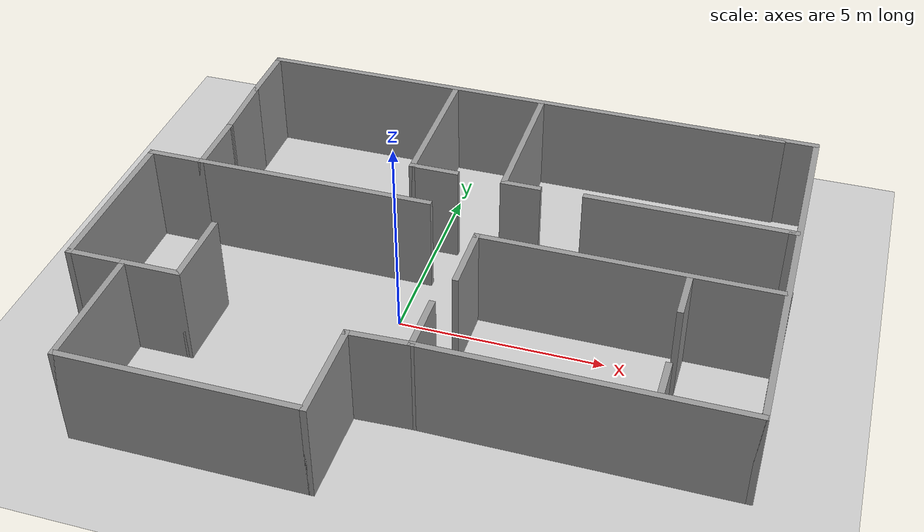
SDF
<sdf version="1.6">
 <world name="default">
  <light name="sun" type="directional">
   <pose>0 0 10 0 -0 0</pose>
   <diffuse>0.8 0.8 0.8 1</diffuse>
   <specular>0.2 0.2 0.2 1</specular>
   <attenuation>
    <range>1000</range>
    <constant>0.9</constant>
    <linear>0.01</linear>
    <quadratic>0.001</quadratic>
   </attenuation>
   <direction>-0.5 0.1 -0.9</direction>
  </light>
  <model name="ground_plane">
   <static>1</static>
   <link name="link">
    <collision name="collision">
     <geometry><plane><normal>0 0 1</normal><size>100 100</size></plane></geometry>
     <surface>
      <contact><collide_bitmask>65535</collide_bitmask></contact>
      <friction><ode><mu>100</mu><mu2>50</mu2></ode></friction>
     </surface>
    </collision>
    <visual name="visual">
     <cast_shadows>0</cast_shadows>
     <geometry><plane><normal>0 0 1</normal><size>100 100</size></plane></geometry>
     <material>
      <script><uri>file://media/materials/scripts/gazebo.material</uri><name>Gazebo/Grey</name></script>
     </material>
    </visual>
   </link>
  </model>
  <gravity>0 0 -9.8</gravity>
  <magnetic_field>6e-06 2.3e-05 -4.2e-05</magnetic_field>
  <atmosphere type="adiabatic"/>
  <physics name="default_physics" default="0" type="ode">
   <max_step_size>0.001</max_step_size>
   <real_time_factor>1</real_time_factor>
   <real_time_update_rate>1000</real_time_update_rate>
  </physics>
  <scene><ambient>0.4 0.4 0.4 1</ambient><background>0.7 0.7 0.7 1</background><shadows>1</shadows></scene>
  <audio><device>default</device></audio>
  <spherical_coordinates>
   <surface_model>EARTH_WGS84</surface_model>
   <latitude_deg>0</latitude_deg>
   <longitude_deg>0</longitude_deg>
   <elevation>0</elevation>
   <heading_deg>0</heading_deg>
  </spherical_coordinates>
  <model name="ufficio">
   <pose>0.905357 0.576151 0 0 -0 0</pose>
   <link name="Wall_0">
    <collision name="Wall_0_Collision">
     <geometry><box><size>13.75 0.15 2.5</size></box></geometry>
     <pose>0 0 1.25 0 -0 0</pose>
    </collision>
    <visual name="Wall_0_Visual">
     <pose>0 0 1.25 0 -0 0</pose>
     <geometry><box><size>13.75 0.15 2.5</size></box></geometry>
     <material>
      <script><uri>file://media/materials/scripts/gazebo.material</uri><name>Gazebo/Grey</name></script>
      <ambient>1 1 1 1</ambient>
     </material>
     <meta><layer>0</layer></meta>
    </visual>
    <pose>0.222 6.08089 0 0 -0 0</pose>
   </link>
   <link name="Wall_10">
    <collision name="Wall_10_Collision">
     <geometry><box><size>2.5 0.15 2.5</size></box></geometry>
     <pose>0 0 1.25 0 -0 0</pose>
    </collision>
    <visual name="Wall_10_Visual">
     <pose>0 0 1.25 0 -0 0</pose>
     <geometry><box><size>2.5 0.15 2.5</size></box></geometry>
     <material>
      <script><uri>file://media/materials/scripts/gazebo.material</uri><name>Gazebo/Grey</name></script>
      <ambient>1 1 1 1</ambient>
     </material>
     <meta><layer>0</layer></meta>
    </visual>
    <pose>-0.9251 -4.95616 0 0 -0 1.5708</pose>
   </link>
   <link name="Wall_12">
    <collision name="Wall_12_Collision">
     <geometry><box><size>7.5 0.15 2.5</size></box></geometry>
     <pose>0 0 1.25 0 -0 0</pose>
    </collision>
    <visual name="Wall_12_Visual">
     <pose>0 0 1.25 0 -0 0</pose>
     <geometry><box><size>7.5 0.15 2.5</size></box></geometry>
     <material>
      <script><uri>file://media/materials/scripts/gazebo.material</uri><name>Gazebo/Grey</name></script>
      <ambient>1 1 1 1</ambient>
     </material>
     <meta><layer>0</layer></meta>
    </visual>
    <pose>4.1856 -3.71884 0 0 -0 0</pose>
   </link>
   <link name="Wall_13">
    <collision name="Wall_13_Collision">
     <geometry><box><size>10 0.15 2.5</size></box></geometry>
     <pose>0 0 1.25 0 -0 0</pose>
    </collision>
    <visual name="Wall_13_Visual">
     <pose>0 0 1.25 0 -0 0</pose>
     <geometry><box><size>10 0.15 2.5</size></box></geometry>
     <material>
      <script><uri>file://media/materials/scripts/gazebo.material</uri><name>Gazebo/Grey</name></script>
      <ambient>1 1 1 1</ambient>
     </material>
     <meta><layer>0</layer></meta>
    </visual>
    <pose>7.8606 1.20616 0 0 -0 1.5708</pose>
   </link>
   <link name="Wall_14">
    <collision name="Wall_14_Collision">
     <geometry><box><size>1.5 0.15 2.5</size></box></geometry>
     <pose>0 0 1.25 0 -0 0</pose>
    </collision>
    <visual name="Wall_14_Visual">
     <pose>0 0 1.25 0 -0 0</pose>
     <geometry><box><size>1.5 0.15 2.5</size></box></geometry>
     <material>
      <script><uri>file://media/materials/scripts/gazebo.material</uri><name>Gazebo/Grey</name></script>
      <ambient>1 1 1 1</ambient>
     </material>
     <meta><layer>0</layer></meta>
    </visual>
    <pose>7.1856 6.13116 0 0 -0 3.14159</pose>
   </link>
   <link name="Wall_16">
    <collision name="Wall_16_Collision">
     <geometry><box><size>6 0.15 2.5</size></box></geometry>
     <pose>0 0 1.25 0 -0 0</pose>
    </collision>
    <visual name="Wall_16_Visual">
     <pose>0 0 1.25 0 -0 0</pose>
     <geometry><box><size>6 0.15 2.5</size></box></geometry>
     <material>
      <script><uri>file://media/materials/scripts/gazebo.material</uri><name>Gazebo/Grey</name></script>
      <ambient>1 1 1 1</ambient>
     </material>
     <meta><layer>0</layer></meta>
    </visual>
    <pose>-3.6001 1.06884 0 0 -0 0</pose>
   </link>
   <link name="Wall_18">
    <collision name="Wall_18_Collision">
     <geometry><box><size>1.5 0.15 2.5</size></box></geometry>
     <pose>0 0 1.25 0 -0 0</pose>
    </collision>
    <visual name="Wall_18_Visual">
     <pose>0 0 1.25 0 -0 0</pose>
     <geometry><box><size>1.5 0.15 2.5</size></box></geometry>
     <material>
      <script><uri>file://media/materials/scripts/gazebo.material</uri><name>Gazebo/Grey</name></script>
      <ambient>1 1 1 1</ambient>
     </material>
     <meta><layer>0</layer></meta>
    </visual>
    <pose>-5.8501 -3.03116 0 0 -0 0</pose>
   </link>
   <link name="Wall_19">
    <collision name="Wall_19_Collision">
     <geometry><box><size>2 0.15 2.5</size></box></geometry>
     <pose>0 0 1.25 0 -0 0</pose>
    </collision>
    <visual name="Wall_19_Visual">
     <pose>0 0 1.25 0 -0 0</pose>
     <geometry><box><size>2 0.15 2.5</size></box></geometry>
     <material>
      <script><uri>file://media/materials/scripts/gazebo.material</uri><name>Gazebo/Grey</name></script>
      <ambient>1 1 1 1</ambient>
     </material>
     <meta><layer>0</layer></meta>
    </visual>
    <pose>-5.1751 -2.10616 0 0 -0 1.5708</pose>
   </link>
   <link name="Wall_2">
    <collision name="Wall_2_Collision">
     <geometry><box><size>1.75 0.15 2.5</size></box></geometry>
     <pose>0 0 1.25 0 -0 0</pose>
    </collision>
    <visual name="Wall_2_Visual">
     <pose>0 0 1.25 0 -0 0</pose>
     <geometry><box><size>1.75 0.15 2.5</size></box></geometry>
     <material>
      <script><uri>file://media/materials/scripts/gazebo.material</uri><name>Gazebo/Grey</name></script>
      <ambient>1 1 1 1</ambient>
     </material>
     <meta><layer>0</layer></meta>
    </visual>
    <pose>-6.578 5.28089 0 0 -0 -1.5708</pose>
   </link>
   <link name="Wall_21">
    <collision name="Wall_21_Collision">
     <geometry><box><size>1.5 0.15 2.5</size></box></geometry>
     <pose>0 0 1.25 0 -0 0</pose>
    </collision>
    <visual name="Wall_21_Visual">
     <pose>0 0 1.25 0 -0 0</pose>
     <geometry><box><size>1.5 0.15 2.5</size></box></geometry>
     <material>
      <script><uri>file://media/materials/scripts/gazebo.material</uri><name>Gazebo/Grey</name></script>
      <ambient>1 1 1 1</ambient>
     </material>
     <meta><layer>0</layer></meta>
    </visual>
    <pose>0.5106 -3.04384 0 0 -0 1.5708</pose>
   </link>
   <link name="Wall_23">
    <collision name="Wall_23_Collision">
     <geometry><box><size>1.75 0.15 2.5</size></box></geometry>
     <pose>0 0 1.25 0 -0 0</pose>
    </collision>
    <visual name="Wall_23_Visual">
     <pose>0 0 1.25 0 -0 0</pose>
     <geometry><box><size>1.75 0.15 2.5</size></box></geometry>
     <material>
      <script><uri>file://media/materials/scripts/gazebo.material</uri><name>Gazebo/Grey</name></script>
      <ambient>1 1 1 1</ambient>
     </material>
     <meta><layer>0</layer></meta>
    </visual>
    <pose>0.7751 -0.617688 0 0 -0 1.5708</pose>
   </link>
   <link name="Wall_24">
    <collision name="Wall_24_Collision">
     <geometry><box><size>7.25 0.15 2.5</size></box></geometry>
     <pose>0 0 1.25 0 -0 0</pose>
    </collision>
    <visual name="Wall_24_Visual">
     <pose>0 0 1.25 0 -0 0</pose>
     <geometry><box><size>7.25 0.15 2.5</size></box></geometry>
     <material>
      <script><uri>file://media/materials/scripts/gazebo.material</uri><name>Gazebo/Grey</name></script>
      <ambient>1 1 1 1</ambient>
     </material>
     <meta><layer>0</layer></meta>
    </visual>
    <pose>4.3251 0.182312 0 0 -0 0</pose>
   </link>
   <link name="Wall_26">
    <collision name="Wall_26_Collision">
     <geometry><box><size>3.75 0.15 2.5</size></box></geometry>
     <pose>0 0 1.25 0 -0 0</pose>
    </collision>
    <visual name="Wall_26_Visual">
     <pose>0 0 1.25 0 -0 0</pose>
     <geometry><box><size>3.75 0.15 2.5</size></box></geometry>
     <material>
      <script><uri>file://media/materials/scripts/gazebo.material</uri><name>Gazebo/Grey</name></script>
      <ambient>1 1 1 1</ambient>
     </material>
     <meta><layer>0</layer></meta>
    </visual>
    <pose>-1.51283 4.20154 0 0 -0 -1.5708</pose>
   </link>
   <link name="Wall_27">
    <collision name="Wall_27_Collision">
     <geometry><box><size>1.25 0.15 2.5</size></box></geometry>
     <pose>0 0 1.25 0 -0 0</pose>
    </collision>
    <visual name="Wall_27_Visual">
     <pose>0 0 1.25 0 -0 0</pose>
     <geometry><box><size>1.25 0.15 2.5</size></box></geometry>
     <material>
      <script><uri>file://media/materials/scripts/gazebo.material</uri><name>Gazebo/Grey</name></script>
      <ambient>1 1 1 1</ambient>
     </material>
     <meta><layer>0</layer></meta>
    </visual>
    <pose>-0.962825 2.40154 0 0 -0 0</pose>
   </link>
   <link name="Wall_29">
    <collision name="Wall_29_Collision">
     <geometry><box><size>3.75 0.15 2.5</size></box></geometry>
     <pose>0 0 1.25 0 -0 0</pose>
    </collision>
    <visual name="Wall_29_Visual">
     <pose>0 0 1.25 0 -0 0</pose>
     <geometry><box><size>3.75 0.15 2.5</size></box></geometry>
     <material>
      <script><uri>file://media/materials/scripts/gazebo.material</uri><name>Gazebo/Grey</name></script>
      <ambient>1 1 1 1</ambient>
     </material>
     <meta><layer>0</layer></meta>
    </visual>
    <pose>0.814775 4.17509 0 0 -0 -1.5708</pose>
   </link>
   <link name="Wall_30">
    <collision name="Wall_30_Collision">
     <geometry><box><size>1 0.15 2.5</size></box></geometry>
     <pose>0 0 1.25 0 -0 0</pose>
    </collision>
    <visual name="Wall_30_Visual">
     <pose>0 0 1.25 0 -0 0</pose>
     <geometry><box><size>1 0.15 2.5</size></box></geometry>
     <material>
      <script><uri>file://media/materials/scripts/gazebo.material</uri><name>Gazebo/Grey</name></script>
      <ambient>1 1 1 1</ambient>
     </material>
     <meta><layer>0</layer></meta>
    </visual>
    <pose>1.23978 2.37509 0 0 -0 0</pose>
   </link>
   <link name="Wall_32">
    <collision name="Wall_32_Collision">
     <geometry><box><size>5 0.15 2.5</size></box></geometry>
     <pose>0 0 1.25 0 -0 0</pose>
    </collision>
    <visual name="Wall_32_Visual">
     <pose>0 0 1.25 0 -0 0</pose>
     <geometry><box><size>5 0.15 2.5</size></box></geometry>
     <material>
      <script><uri>file://media/materials/scripts/gazebo.material</uri><name>Gazebo/Grey</name></script>
      <ambient>1 1 1 1</ambient>
     </material>
     <meta><layer>0</layer></meta>
    </visual>
    <pose>5.2632 2.40434 0 0 -0 0</pose>
   </link>
   <link name="Wall_33">
    <collision name="Wall_33_Collision">
     <geometry><box><size>0.25 0.15 2.5</size></box></geometry>
     <pose>0 0 1.25 0 -0 0</pose>
    </collision>
    <visual name="Wall_33_Visual">
     <pose>0 0 1.25 0 -0 0</pose>
     <geometry><box><size>0.25 0.15 2.5</size></box></geometry>
     <material>
      <script><uri>file://media/materials/scripts/gazebo.material</uri><name>Gazebo/Grey</name></script>
      <ambient>1 1 1 1</ambient>
     </material>
     <meta><layer>0</layer></meta>
    </visual>
    <pose>7.7382 2.40434 0 0 -0 0</pose>
   </link>
   <link name="Wall_35">
    <collision name="Wall_35_Collision">
     <geometry><box><size>1.58705 0.15 2.5</size></box></geometry>
     <pose>0 0 1.25 0 -0 0</pose>
    </collision>
    <visual name="Wall_35_Visual">
     <pose>0 0 1.25 0 -0 0</pose>
     <geometry><box><size>1.58705 0.15 2.5</size></box></geometry>
     <material>
      <script><uri>file://media/materials/scripts/gazebo.material</uri><name>Gazebo/Grey</name></script>
      <ambient>1 1 1 1</ambient>
     </material>
     <meta><layer>0</layer></meta>
    </visual>
    <pose>-0.20725 -3.75 0 0 -0 0.043384</pose>
   </link>
   <link name="Wall_37">
    <collision name="Wall_37_Collision">
     <geometry><box><size>1.96282 0.15 2.5</size></box></geometry>
     <pose>0 0 1.25 0 -0 0</pose>
    </collision>
    <visual name="Wall_37_Visual">
     <pose>0 0 1.25 0 -0 0</pose>
     <geometry><box><size>1.96282 0.15 2.5</size></box></geometry>
     <material>
      <script><uri>file://media/materials/scripts/gazebo.material</uri><name>Gazebo/Grey</name></script>
      <ambient>1 1 1 1</ambient>
     </material>
     <meta><layer>0</layer></meta>
    </visual>
    <pose>-6.55155 3.57486 0 0 -0 -1.54161</pose>
   </link>
   <link name="Wall_39">
    <collision name="Wall_39_Collision">
     <geometry><box><size>1.25 0.15 2.5</size></box></geometry>
     <pose>0 0 1.25 0 -0 0</pose>
    </collision>
    <visual name="Wall_39_Visual">
     <pose>0 0 1.25 0 -0 0</pose>
     <geometry><box><size>1.25 0.15 2.5</size></box></geometry>
     <material>
      <script><uri>file://media/materials/scripts/gazebo.material</uri><name>Gazebo/Grey</name></script>
      <ambient>1 1 1 1</ambient>
     </material>
     <meta><layer>0</layer></meta>
    </visual>
    <pose>5.70803 -0.486488 0 0 -0 -1.5708</pose>
   </link>
   <link name="Wall_4">
    <collision name="Wall_4_Collision">
     <geometry><box><size>1.75 0.15 2.5</size></box></geometry>
     <pose>0 0 1.25 0 -0 0</pose>
    </collision>
    <visual name="Wall_4_Visual">
     <pose>0 0 1.25 0 -0 0</pose>
     <geometry><box><size>1.75 0.15 2.5</size></box></geometry>
     <material>
      <script><uri>file://media/materials/scripts/gazebo.material</uri><name>Gazebo/Grey</name></script>
      <ambient>1 1 1 1</ambient>
     </material>
     <meta><layer>0</layer></meta>
    </visual>
    <pose>-6.5251 1.86884 0 0 -0 -1.5708</pose>
   </link>
   <link name="Wall_41">
    <collision name="Wall_41_Collision">
     <geometry><box><size>1 0.15 2.5</size></box></geometry>
     <pose>0 0 1.25 0 -0 0</pose>
    </collision>
    <visual name="Wall_41_Visual">
     <pose>0 0 1.25 0 -0 0</pose>
     <geometry><box><size>1 0.15 2.5</size></box></geometry>
     <material>
      <script><uri>file://media/materials/scripts/gazebo.material</uri><name>Gazebo/Grey</name></script>
      <ambient>1 1 1 1</ambient>
     </material>
     <meta><layer>0</layer></meta>
    </visual>
    <pose>5.76093 -3.21449 0 0 -0 1.5708</pose>
   </link>
   <link name="Wall_5">
    <collision name="Wall_5_Collision">
     <geometry><box><size>1.5 0.15 2.5</size></box></geometry>
     <pose>0 0 1.25 0 -0 0</pose>
    </collision>
    <visual name="Wall_5_Visual">
     <pose>0 0 1.25 0 -0 0</pose>
     <geometry><box><size>1.5 0.15 2.5</size></box></geometry>
     <material>
      <script><uri>file://media/materials/scripts/gazebo.material</uri><name>Gazebo/Grey</name></script>
      <ambient>1 1 1 1</ambient>
     </material>
     <meta><layer>0</layer></meta>
    </visual>
    <pose>-7.2001 1.06884 0 0 -0 3.14159</pose>
   </link>
   <link name="Wall_6">
    <collision name="Wall_6_Collision">
     <geometry><box><size>4.25 0.15 2.5</size></box></geometry>
     <pose>0 0 1.25 0 -0 0</pose>
    </collision>
    <visual name="Wall_6_Visual">
     <pose>0 0 1.25 0 -0 0</pose>
     <geometry><box><size>4.25 0.15 2.5</size></box></geometry>
     <material>
      <script><uri>file://media/materials/scripts/gazebo.material</uri><name>Gazebo/Grey</name></script>
      <ambient>1 1 1 1</ambient>
     </material>
     <meta><layer>0</layer></meta>
    </visual>
    <pose>-7.8751 -0.981163 0 0 -0 -1.5708</pose>
   </link>
   <link name="Wall_7">
    <collision name="Wall_7_Collision">
     <geometry><box><size>1.5 0.15 2.5</size></box></geometry>
     <pose>0 0 1.25 0 -0 0</pose>
    </collision>
    <visual name="Wall_7_Visual">
     <pose>0 0 1.25 0 -0 0</pose>
     <geometry><box><size>1.5 0.15 2.5</size></box></geometry>
     <material>
      <script><uri>file://media/materials/scripts/gazebo.material</uri><name>Gazebo/Grey</name></script>
      <ambient>1 1 1 1</ambient>
     </material>
     <meta><layer>0</layer></meta>
    </visual>
    <pose>-7.2001 -3.03116 0 0 -0 0</pose>
   </link>
   <link name="Wall_8">
    <collision name="Wall_8_Collision">
     <geometry><box><size>3.25 0.15 2.5</size></box></geometry>
     <pose>0 0 1.25 0 -0 0</pose>
    </collision>
    <visual name="Wall_8_Visual">
     <pose>0 0 1.25 0 -0 0</pose>
     <geometry><box><size>3.25 0.15 2.5</size></box></geometry>
     <material>
      <script><uri>file://media/materials/scripts/gazebo.material</uri><name>Gazebo/Grey</name></script>
      <ambient>1 1 1 1</ambient>
     </material>
     <meta><layer>0</layer></meta>
    </visual>
    <pose>-6.5251 -4.58116 0 0 -0 -1.5708</pose>
   </link>
   <link name="Wall_9">
    <collision name="Wall_9_Collision">
     <geometry><box><size>5.75 0.15 2.5</size></box></geometry>
     <pose>0 0 1.25 0 -0 0</pose>
    </collision>
    <visual name="Wall_9_Visual">
     <pose>0 0 1.25 0 -0 0</pose>
     <geometry><box><size>5.75 0.15 2.5</size></box></geometry>
     <material>
      <script><uri>file://media/materials/scripts/gazebo.material</uri><name>Gazebo/Grey</name></script>
      <ambient>1 1 1 1</ambient>
     </material>
     <meta><layer>0</layer></meta>
    </visual>
    <pose>-3.7251 -6.13116 0 0 -0 0</pose>
   </link>
   <static>1</static>
  </model>
 </world>
</sdf>
